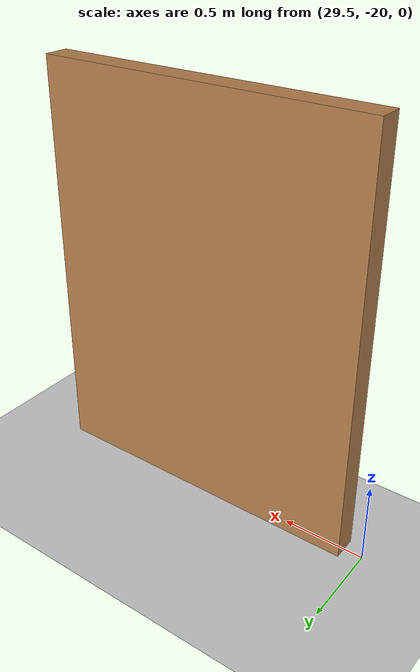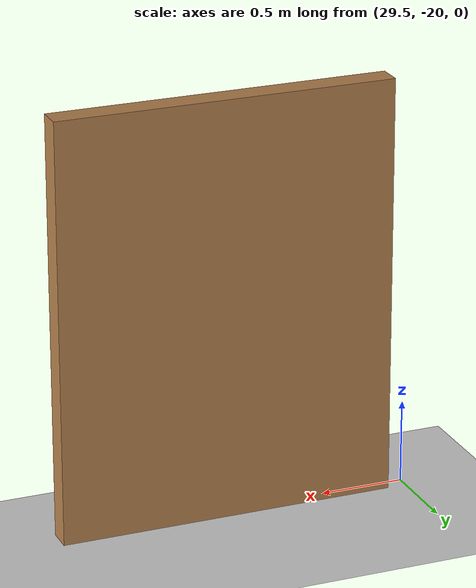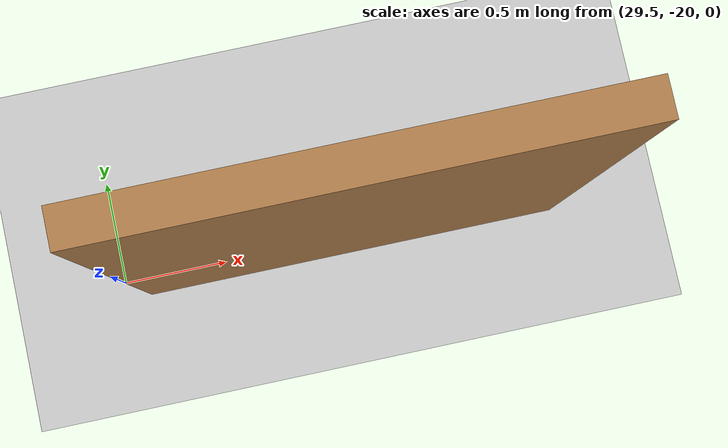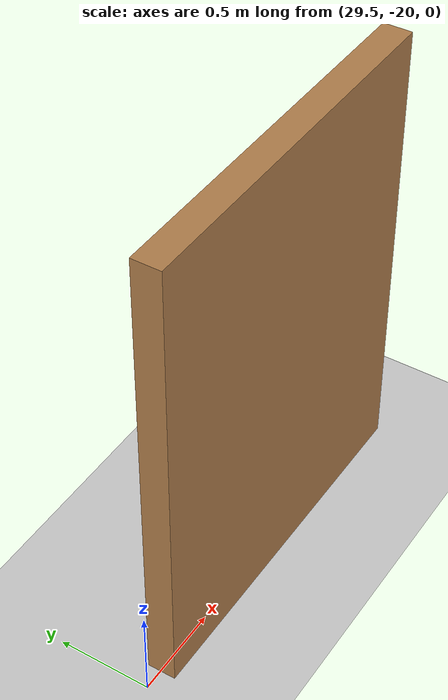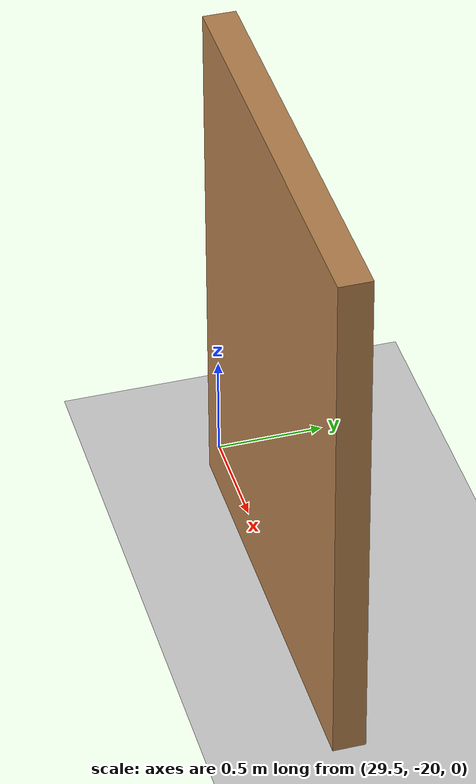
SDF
<sdf version="1.6">
 <world name="default">
  <model name="ground_plane">
   <static>1</static>
   <link name="link">
    <collision name="collision">
     <geometry><plane><normal>0 0 1</normal><size>100 100</size></plane></geometry>
     <surface><friction><ode><mu>100</mu><mu2>50</mu2></ode></friction></surface>
    </collision>
    <visual name="visual">
     <cast_shadows>0</cast_shadows>
     <geometry><plane><normal>0 0 1</normal><size>100 100</size></plane></geometry>
     <material>
      <script><uri>file://media/materials/scripts/gazebo.material</uri><name>Gazebo/Grey</name></script>
     </material>
    </visual>
   </link>
  </model>
  <model name="tr_maze_lay_1_4">
   <pose>30.613 -20.0046 0 0 -0 0</pose>
   <link name="Wall_21">
    <collision name="Wall_21_Collision">
     <geometry><box><size>2 0.15 2.5</size></box></geometry>
     <pose>0 0 1.25 0 -0 0</pose>
    </collision>
    <visual name="Wall_21_Visual">
     <pose>0 0 1.25 0 -0 0</pose>
     <geometry><box><size>2 0.15 2.5</size></box></geometry>
     <material>
      <script><uri>file://media/materials/scripts/gazebo.material</uri><name>Gazebo/Wood</name></script>
      <ambient>1 1 1 1</ambient>
     </material>
    </visual>
    <pose>0 0 0 0 -0 3.14159</pose>
   </link>
   <static>1</static>
  </model>
 </world>
</sdf>
